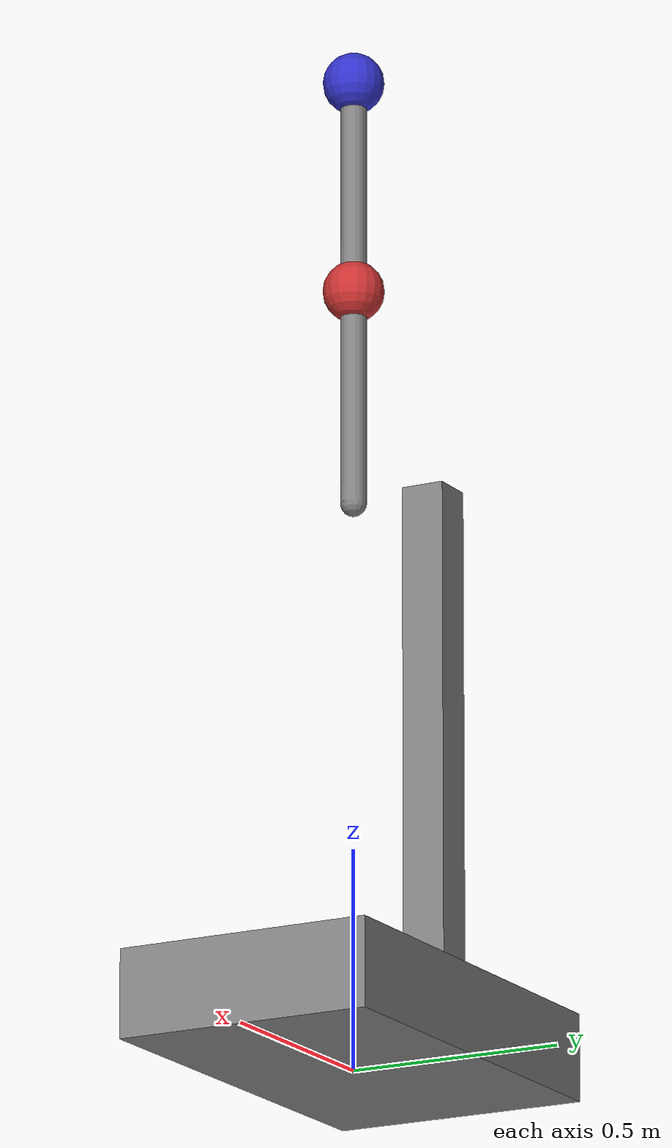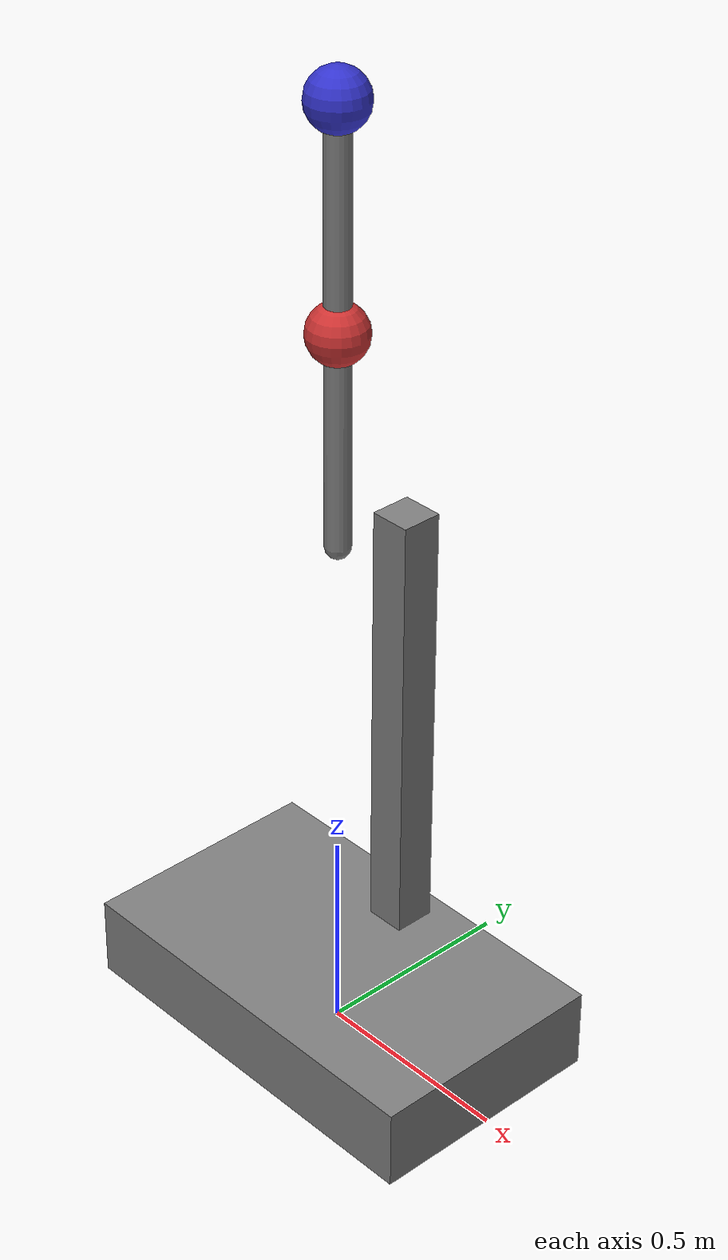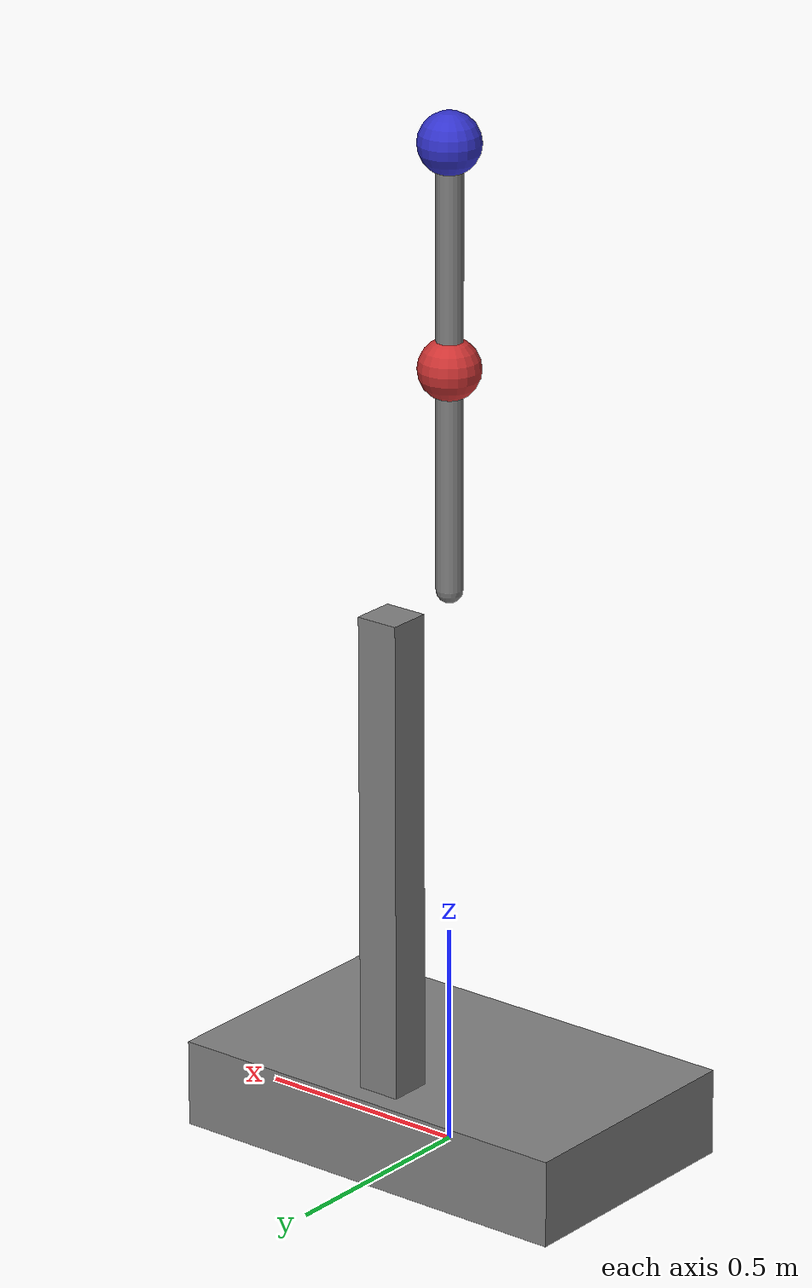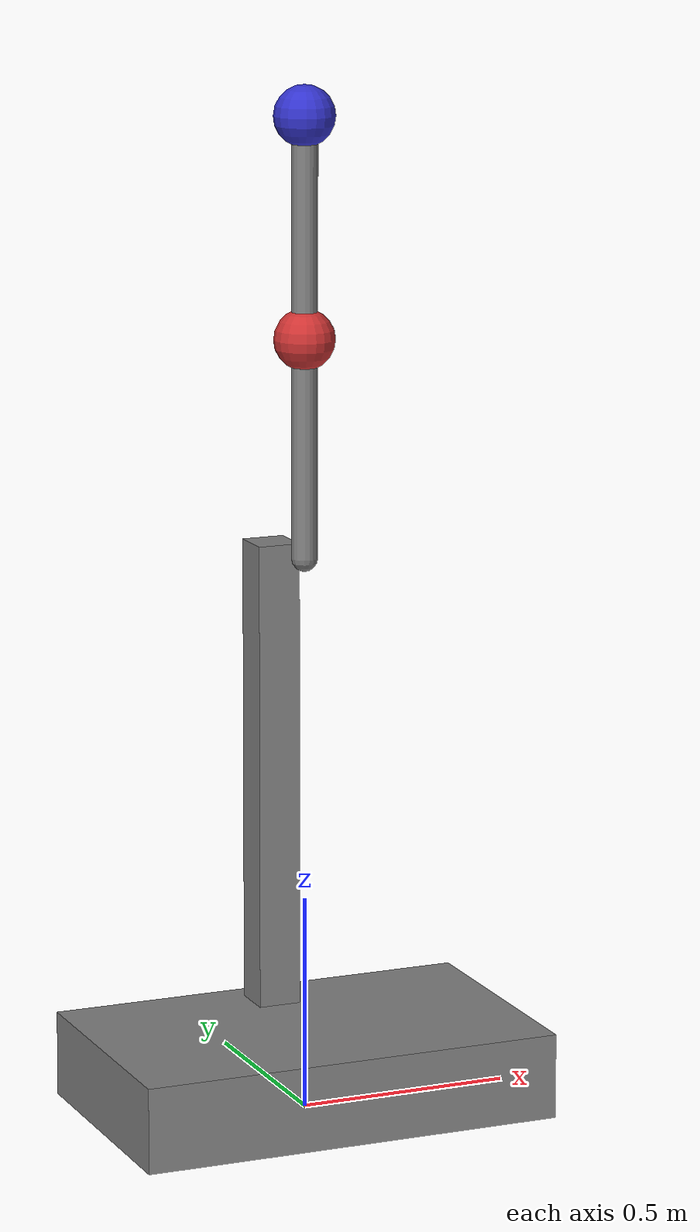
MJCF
<mujoco model="cart_pendulum1">
    <worldbody>
        <body name="cart_1" pos="0 0 0.1">
            <joint name="slider_1" type="slide" axis="1 0 0" />
            <geom name="cart_geom_1" type="box" size="0.5 0.3 0.1" mass="1.0" />
            <body name="stand_1" pos="0 0.2 0.6">
                <geom name="stand_geom_1" type="box" size="0.05 0.05 0.6" mass="0" />
                <body name="arm1_1" pos="0 -0.2 0.6">
                    <joint name="hinge1_1" type="hinge" axis="0 1 0"/>
                    <geom name="arm1_geom_1" type="capsule" fromto="0 0 0 0 0 0.5" size="0.03" mass="0" />
                    <body name="mass1_1" pos="0 0 0.5">
                        <geom name="mass1_geom_1" type="sphere" size="0.07" mass="0.1" rgba="0.8 0.2 0.2 1"/>
                    </body>
                    <body name="arm2_1" pos="0 0 0.5">
                        <joint name="hinge2_1" type="hinge" axis="0 1 0"/>
                        <geom name="arm2_geom_1" type="capsule" fromto="0 0 0 0 0 0.5" size="0.03" mass="0" />
                        <body name="mass2_1" pos="0 0 0.5">
                            <geom name="mass2_geom_1" type="sphere" size="0.07" mass="0.1" rgba="0.2 0.2 0.8 1"/>
                        </body>
                    </body>
                </body>
            </body>
        </body>
    </worldbody>
</mujoco>
